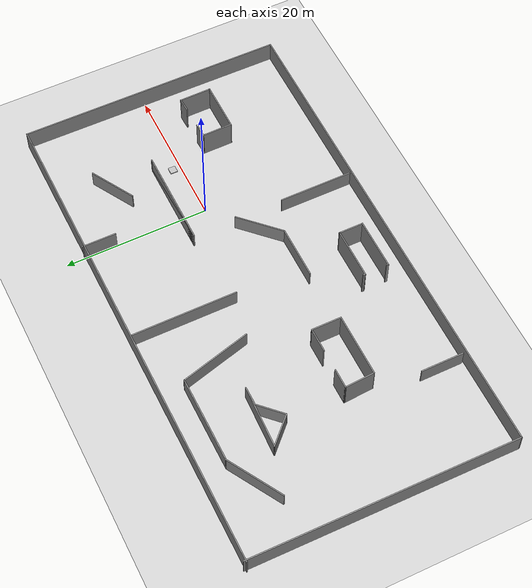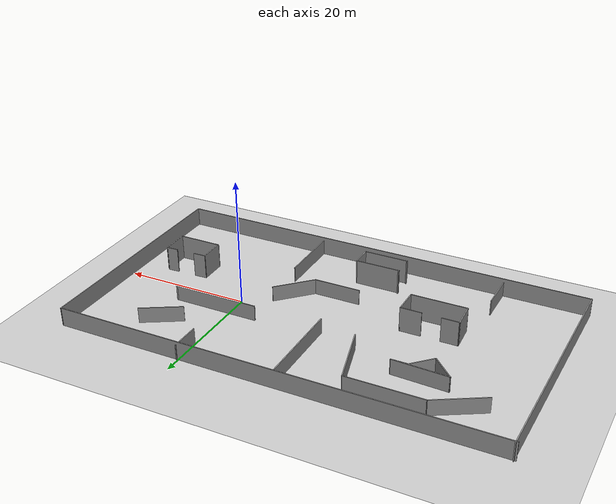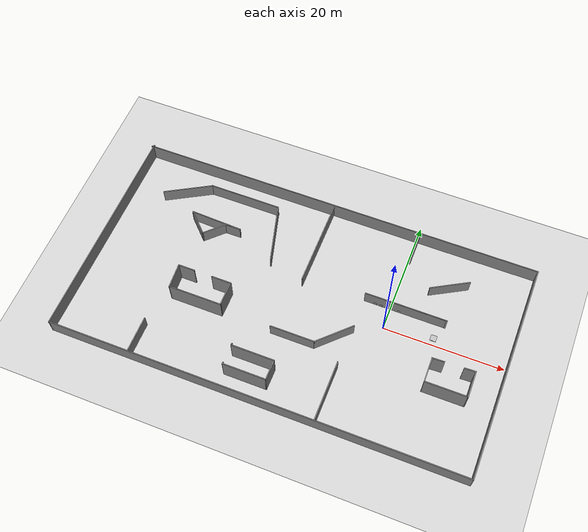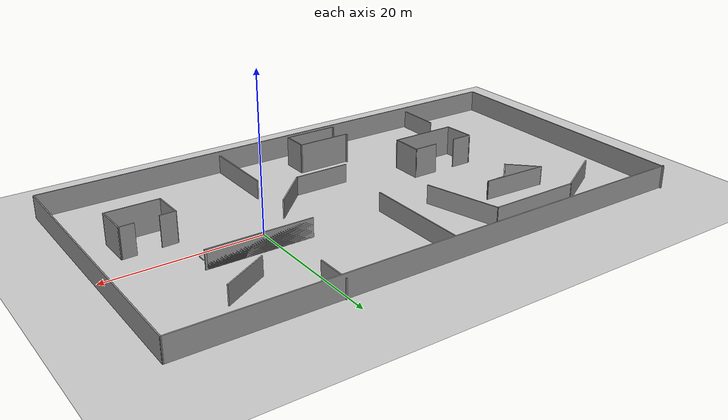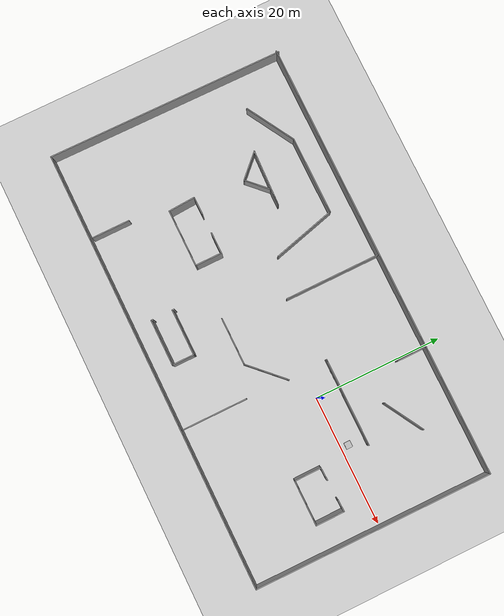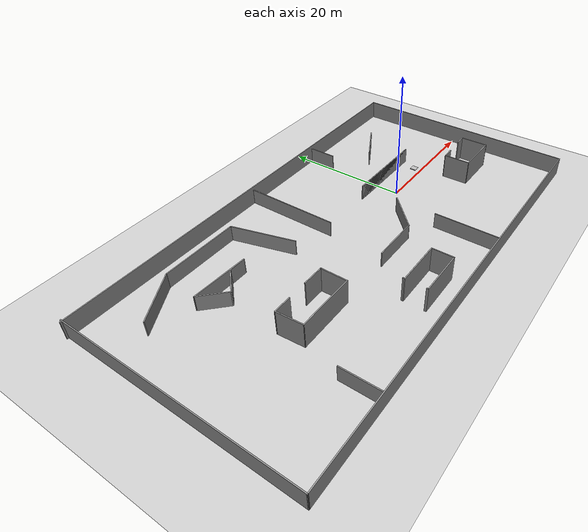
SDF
<sdf version="1.7">
 <world name="default">
  <model name="ground_plane">
   <static>1</static>
   <link name="link">
    <collision name="collision">
     <geometry><plane><normal>0 0 1</normal><size>100 100</size></plane></geometry>
     <surface>
      <contact><collide_bitmask>65535</collide_bitmask></contact>
      <friction><ode><mu>100</mu><mu2>50</mu2></ode></friction>
     </surface>
    </collision>
    <visual name="visual">
     <cast_shadows>0</cast_shadows>
     <geometry><plane><normal>0 0 1</normal><size>100 100</size></plane></geometry>
     <material>
      <script><uri>file://media/materials/scripts/gazebo.material</uri><name>Gazebo/Grey</name></script>
     </material>
    </visual>
   </link>
  </model>
  <model name="forkwork.world">
   <pose>-14.2792 -0.985001 0 0 -0 0</pose>
   <link name="Wall_0">
    <collision name="Wall_0_Collision">
     <geometry><box><size>37.2514 0.15 3</size></box></geometry>
     <pose>0 0 1.5 0 -0 0</pose>
    </collision>
    <visual name="Wall_0_Visual">
     <pose>0 0 1.5 0 -0 0</pose>
     <geometry><box><size>37.2514 0.15 3</size></box></geometry>
     <material>
      <script><uri>file://media/materials/scripts/gazebo.material</uri><name>Gazebo/Grey</name></script>
      <ambient>1 1 1 1</ambient>
     </material>
     <meta><layer>0</layer></meta>
    </visual>
    <pose>-34.4248 1e-06 0 0 -0 -1.57947</pose>
   </link>
   <link name="Wall_1">
    <collision name="Wall_1_Collision">
     <geometry><box><size>69.1611 0.15 3</size></box></geometry>
     <pose>0 0 1.5 0 -0 0</pose>
    </collision>
    <visual name="Wall_1_Visual">
     <pose>0 0 1.5 0 -0 0</pose>
     <geometry><box><size>69.1611 0.15 3</size></box></geometry>
     <material>
      <script><uri>file://media/materials/scripts/gazebo.material</uri><name>Gazebo/Grey</name></script>
      <ambient>1 1 1 1</ambient>
     </material>
     <meta><layer>0</layer></meta>
    </visual>
    <pose>-0.080338 -18.55 0 0 -0 0</pose>
   </link>
   <link name="Wall_10">
    <collision name="Wall_10_Collision">
     <geometry><box><size>6 0.15 2.5</size></box></geometry>
     <pose>0 0 1.25 0 -0 0</pose>
    </collision>
    <visual name="Wall_10_Visual">
     <pose>0 0 1.25 0 -0 0</pose>
     <geometry><box><size>6 0.15 2.5</size></box></geometry>
     <material>
      <script><uri>file://media/materials/scripts/gazebo.material</uri><name>Gazebo/Grey</name></script>
      <ambient>1 1 1 1</ambient>
     </material>
     <meta><layer>0</layer></meta>
    </visual>
    <pose>-21.0697 -15.2699 0 0 -0 -1.5708</pose>
   </link>
   <link name="Wall_12">
    <collision name="Wall_12_Collision">
     <geometry><box><size>10.25 0.15 2.5</size></box></geometry>
     <pose>0 0 1.25 0 -0 0</pose>
    </collision>
    <visual name="Wall_12_Visual">
     <pose>0 0 1.25 0 -0 0</pose>
     <geometry><box><size>10.25 0.15 2.5</size></box></geometry>
     <material>
      <script><uri>file://media/materials/scripts/gazebo.material</uri><name>Gazebo/Grey</name></script>
      <ambient>1 1 1 1</ambient>
     </material>
     <meta><layer>0</layer></meta>
    </visual>
    <pose>9.87941 -13.292 0 0 -0 -1.5708</pose>
   </link>
   <link name="Wall_14">
    <collision name="Wall_14_Collision">
     <geometry><box><size>13.5 0.15 2.5</size></box></geometry>
     <pose>0 0 1.25 0 -0 0</pose>
    </collision>
    <visual name="Wall_14_Visual">
     <pose>0 0 1.25 0 -0 0</pose>
     <geometry><box><size>13.5 0.15 2.5</size></box></geometry>
     <material>
      <script><uri>file://media/materials/scripts/gazebo.material</uri><name>Gazebo/Grey</name></script>
      <ambient>1 1 1 1</ambient>
     </material>
     <meta><layer>0</layer></meta>
    </visual>
    <pose>16.5544 4.66556 0 0 -0 0</pose>
   </link>
   <link name="Wall_16">
    <collision name="Wall_16_Collision">
     <geometry><box><size>15 0.15 2.5</size></box></geometry>
     <pose>0 0 1.25 0 -0 0</pose>
    </collision>
    <visual name="Wall_16_Visual">
     <pose>0 0 1.25 0 -0 0</pose>
     <geometry><box><size>15 0.15 2.5</size></box></geometry>
     <material>
      <script><uri>file://media/materials/scripts/gazebo.material</uri><name>Gazebo/Grey</name></script>
      <ambient>1 1 1 1</ambient>
     </material>
     <meta><layer>0</layer></meta>
    </visual>
    <pose>-0.544267 10.8715 0 0 -0 -1.5708</pose>
   </link>
   <link name="Wall_18">
    <collision name="Wall_18_Collision">
     <geometry><box><size>4.75 0.15 2.5</size></box></geometry>
     <pose>0 0 1.25 0 -0 0</pose>
    </collision>
    <visual name="Wall_18_Visual">
     <pose>0 0 1.25 0 -0 0</pose>
     <geometry><box><size>4.75 0.15 2.5</size></box></geometry>
     <material>
      <script><uri>file://media/materials/scripts/gazebo.material</uri><name>Gazebo/Grey</name></script>
      <ambient>1 1 1 1</ambient>
     </material>
     <meta><layer>0</layer></meta>
    </visual>
    <pose>14.5671 16.1364 0 0 -0 -1.5708</pose>
   </link>
   <link name="Wall_2">
    <collision name="Wall_2_Collision">
     <geometry><box><size>37.0004 0.15 3</size></box></geometry>
     <pose>0 0 1.5 0 -0 0</pose>
    </collision>
    <visual name="Wall_2_Visual">
     <pose>0 0 1.5 0 -0 0</pose>
     <geometry><box><size>37.0004 0.15 3</size></box></geometry>
     <material>
      <script><uri>file://media/materials/scripts/gazebo.material</uri><name>Gazebo/Grey</name></script>
      <ambient>1 1 1 1</ambient>
     </material>
     <meta><layer>0</layer></meta>
    </visual>
    <pose>34.5057 -0.124999 0 0 -0 1.56643</pose>
   </link>
   <link name="Wall_20">
    <collision name="Wall_20_Collision">
     <geometry><box><size>13.75 0.15 2.5</size></box></geometry>
     <pose>0 0 1.25 0 -0 0</pose>
    </collision>
    <visual name="Wall_20_Visual">
     <pose>0 0 1.25 0 -0 0</pose>
     <geometry><box><size>13.75 0.15 2.5</size></box></geometry>
     <material>
      <script><uri>file://media/materials/scripts/gazebo.material</uri><name>Gazebo/Grey</name></script>
      <ambient>1 1 1 1</ambient>
     </material>
     <meta><layer>0</layer></meta>
    </visual>
    <pose>16.6794 4.66556 0 0 -0 0</pose>
   </link>
   <link name="Wall_27">
    <pose>-6.14084 -13.726 0 0 -0 -1.5708</pose>
    <visual name="Wall_27_Visual_0">
     <pose>-1.67802 0 2 0 -0 0</pose>
     <geometry><box><size>0.393966 0.15 4</size></box></geometry>
     <material>
      <script><uri>file://media/materials/scripts/gazebo.material</uri><name>Gazebo/Grey</name></script>
      <ambient>1 1 1 1</ambient>
     </material>
     <meta><layer>0</layer></meta>
    </visual>
    <collision name="Wall_27_Collision_0">
     <geometry><box><size>0.393966 0.15 4</size></box></geometry>
     <pose>-1.67802 0 2 0 -0 0</pose>
    </collision>
    <visual name="Wall_27_Visual_1">
     <pose>1.69698 0 2 0 -0 0</pose>
     <geometry><box><size>0.356034 0.15 4</size></box></geometry>
     <material>
      <script><uri>file://media/materials/scripts/gazebo.material</uri><name>Gazebo/Grey</name></script>
      <ambient>1 1 1 1</ambient>
     </material>
     <meta><layer>0</layer></meta>
    </visual>
    <collision name="Wall_27_Collision_1">
     <geometry><box><size>0.356034 0.15 4</size></box></geometry>
     <pose>1.69698 0 2 0 -0 0</pose>
    </collision>
   </link>
   <link name="Wall_28">
    <collision name="Wall_28_Collision">
     <geometry><box><size>7.25 0.15 4</size></box></geometry>
     <pose>0 0 2 0 -0 0</pose>
    </collision>
    <visual name="Wall_28_Visual">
     <pose>0 0 2 0 -0 0</pose>
     <geometry><box><size>7.25 0.15 4</size></box></geometry>
     <material>
      <script><uri>file://media/materials/scripts/gazebo.material</uri><name>Gazebo/Grey</name></script>
      <ambient>1 1 1 1</ambient>
     </material>
     <meta><layer>0</layer></meta>
    </visual>
    <pose>-2.59084 -15.526 0 0 -0 0</pose>
   </link>
   <link name="Wall_29">
    <collision name="Wall_29_Collision">
     <geometry><box><size>3.5 0.15 4</size></box></geometry>
     <pose>0 0 2 0 -0 0</pose>
    </collision>
    <visual name="Wall_29_Visual">
     <pose>0 0 2 0 -0 0</pose>
     <geometry><box><size>3.5 0.15 4</size></box></geometry>
     <material>
      <script><uri>file://media/materials/scripts/gazebo.material</uri><name>Gazebo/Grey</name></script>
      <ambient>1 1 1 1</ambient>
     </material>
     <meta><layer>0</layer></meta>
    </visual>
    <pose>0.959162 -13.851 0 0 -0 1.5708</pose>
   </link>
   <link name="Wall_3">
    <collision name="Wall_3_Collision">
     <geometry><box><size>69.25 0.15 3</size></box></geometry>
     <pose>0 0 1.5 0 -0 0</pose>
    </collision>
    <visual name="Wall_3_Visual">
     <pose>0 0 1.5 0 -0 0</pose>
     <geometry><box><size>69.25 0.15 3</size></box></geometry>
     <material>
      <script><uri>file://media/materials/scripts/gazebo.material</uri><name>Gazebo/Grey</name></script>
      <ambient>1 1 1 1</ambient>
     </material>
     <meta><layer>0</layer></meta>
    </visual>
    <pose>0.036161 18.3 0 0 -0 3.14159</pose>
   </link>
   <link name="Wall_30">
    <collision name="Wall_30_Collision">
     <geometry><box><size>7.25 0.15 4</size></box></geometry>
     <pose>0 0 2 0 -0 0</pose>
    </collision>
    <visual name="Wall_30_Visual">
     <pose>0 0 2 0 -0 0</pose>
     <geometry><box><size>7.25 0.15 4</size></box></geometry>
     <material>
      <script><uri>file://media/materials/scripts/gazebo.material</uri><name>Gazebo/Grey</name></script>
      <ambient>1 1 1 1</ambient>
     </material>
     <meta><layer>0</layer></meta>
    </visual>
    <pose>-2.59084 -12.176 0 0 -0 3.14159</pose>
   </link>
   <link name="Wall_32">
    <collision name="Wall_32_Collision">
     <geometry><box><size>4.25 0.15 4</size></box></geometry>
     <pose>0 0 2 0 -0 0</pose>
    </collision>
    <visual name="Wall_32_Visual">
     <pose>0 0 2 0 -0 0</pose>
     <geometry><box><size>4.25 0.15 4</size></box></geometry>
     <material>
      <script><uri>file://media/materials/scripts/gazebo.material</uri><name>Gazebo/Grey</name></script>
      <ambient>1 1 1 1</ambient>
     </material>
     <meta><layer>0</layer></meta>
    </visual>
    <pose>23.2197 -5.021 0 0 -0 -1.55982</pose>
   </link>
   <link name="Wall_33">
    <collision name="Wall_33_Collision">
     <geometry><box><size>7 0.15 4</size></box></geometry>
     <pose>0 0 2 0 -0 0</pose>
    </collision>
    <visual name="Wall_33_Visual">
     <pose>0 0 2 0 -0 0</pose>
     <geometry><box><size>7 0.15 4</size></box></geometry>
     <material>
      <script><uri>file://media/materials/scripts/gazebo.material</uri><name>Gazebo/Grey</name></script>
      <ambient>1 1 1 1</ambient>
     </material>
     <meta><layer>0</layer></meta>
    </visual>
    <pose>26.6672 -7.071 0 0 -0 0</pose>
   </link>
   <link name="Wall_34">
    <collision name="Wall_34_Collision">
     <geometry><box><size>4.5 0.15 4</size></box></geometry>
     <pose>0 0 2 0 -0 0</pose>
    </collision>
    <visual name="Wall_34_Visual">
     <pose>0 0 2 0 -0 0</pose>
     <geometry><box><size>4.5 0.15 4</size></box></geometry>
     <material>
      <script><uri>file://media/materials/scripts/gazebo.material</uri><name>Gazebo/Grey</name></script>
      <ambient>1 1 1 1</ambient>
     </material>
     <meta><layer>0</layer></meta>
    </visual>
    <pose>30.0697 -4.896 0 0 -0 1.58114</pose>
   </link>
   <link name="Wall_35">
    <pose>26.6222 -2.846 0 0 -0 -3.10511</pose>
    <visual name="Wall_35_Visual_0">
     <pose>-2.54266 0 2 0 -0 0</pose>
     <geometry><box><size>1.91925 0.15 4</size></box></geometry>
     <material>
      <script><uri>file://media/materials/scripts/gazebo.material</uri><name>Gazebo/Grey</name></script>
      <ambient>1 1 1 1</ambient>
     </material>
     <meta><layer>0</layer></meta>
    </visual>
    <collision name="Wall_35_Collision_0">
     <geometry><box><size>1.91925 0.15 4</size></box></geometry>
     <pose>-2.54266 0 2 0 -0 0</pose>
    </collision>
    <visual name="Wall_35_Visual_1">
     <pose>2.45962 0 2 0 -0 0</pose>
     <geometry><box><size>2.08531 0.15 4</size></box></geometry>
     <material>
      <script><uri>file://media/materials/scripts/gazebo.material</uri><name>Gazebo/Grey</name></script>
      <ambient>1 1 1 1</ambient>
     </material>
     <meta><layer>0</layer></meta>
    </visual>
    <collision name="Wall_35_Collision_1">
     <geometry><box><size>2.08531 0.15 4</size></box></geometry>
     <pose>2.45962 0 2 0 -0 0</pose>
    </collision>
   </link>
   <link name="Wall_37">
    <collision name="Wall_37_Collision">
     <geometry><box><size>8.5 0.15 2.5</size></box></geometry>
     <pose>0 0 1.25 0 -0 0</pose>
    </collision>
    <visual name="Wall_37_Visual">
     <pose>0 0 1.25 0 -0 0</pose>
     <geometry><box><size>8.5 0.15 2.5</size></box></geometry>
     <material>
      <script><uri>file://media/materials/scripts/gazebo.material</uri><name>Gazebo/Grey</name></script>
      <ambient>1 1 1 1</ambient>
     </material>
     <meta><layer>0</layer></meta>
    </visual>
    <pose>-25.0526 12.6884 0 0 -0 0.523599</pose>
   </link>
   <link name="Wall_38">
    <collision name="Wall_38_Collision">
     <geometry><box><size>12.25 0.15 2.5</size></box></geometry>
     <pose>0 0 1.25 0 -0 0</pose>
    </collision>
    <visual name="Wall_38_Visual">
     <pose>0 0 1.25 0 -0 0</pose>
     <geometry><box><size>12.25 0.15 2.5</size></box></geometry>
     <material>
      <script><uri>file://media/materials/scripts/gazebo.material</uri><name>Gazebo/Grey</name></script>
      <ambient>1 1 1 1</ambient>
     </material>
     <meta><layer>0</layer></meta>
    </visual>
    <pose>-15.387 14.7759 0 0 -0 0</pose>
   </link>
   <link name="Wall_39">
    <collision name="Wall_39_Collision">
     <geometry><box><size>10.25 0.15 2.5</size></box></geometry>
     <pose>0 0 1.25 0 -0 0</pose>
    </collision>
    <visual name="Wall_39_Visual">
     <pose>0 0 1.25 0 -0 0</pose>
     <geometry><box><size>10.25 0.15 2.5</size></box></geometry>
     <material>
      <script><uri>file://media/materials/scripts/gazebo.material</uri><name>Gazebo/Grey</name></script>
      <ambient>1 1 1 1</ambient>
     </material>
     <meta><layer>0</layer></meta>
    </visual>
    <pose>-8.02994 9.89796 0 0 -0 -1.309</pose>
   </link>
   <link name="Wall_41">
    <collision name="Wall_41_Collision">
     <geometry><box><size>7.5 0.15 2.5</size></box></geometry>
     <pose>0 0 1.25 0 -0 0</pose>
    </collision>
    <visual name="Wall_41_Visual">
     <pose>0 0 1.25 0 -0 0</pose>
     <geometry><box><size>7.5 0.15 2.5</size></box></geometry>
     <material>
      <script><uri>file://media/materials/scripts/gazebo.material</uri><name>Gazebo/Grey</name></script>
      <ambient>1 1 1 1</ambient>
     </material>
     <meta><layer>0</layer></meta>
    </visual>
    <pose>1.59161 -6.32949 0 0 -0 0</pose>
   </link>
   <link name="Wall_42">
    <collision name="Wall_42_Collision">
     <geometry><box><size>7 0.15 2.5</size></box></geometry>
     <pose>0 0 1.25 0 -0 0</pose>
    </collision>
    <visual name="Wall_42_Visual">
     <pose>0 0 1.25 0 -0 0</pose>
     <geometry><box><size>7 0.15 2.5</size></box></geometry>
     <material>
      <script><uri>file://media/materials/scripts/gazebo.material</uri><name>Gazebo/Grey</name></script>
      <ambient>1 1 1 1</ambient>
     </material>
     <meta><layer>0</layer></meta>
    </visual>
    <pose>7.68845 -3.90765 0 0 -0 0.785398</pose>
   </link>
   <link name="Wall_44">
    <collision name="Wall_44_Collision">
     <geometry><box><size>6.75 0.15 2.5</size></box></geometry>
     <pose>0 0 1.25 0 -0 0</pose>
    </collision>
    <visual name="Wall_44_Visual">
     <pose>0 0 1.25 0 -0 0</pose>
     <geometry><box><size>6.75 0.15 2.5</size></box></geometry>
     <material>
      <script><uri>file://media/materials/scripts/gazebo.material</uri><name>Gazebo/Grey</name></script>
      <ambient>1 1 1 1</ambient>
     </material>
     <meta><layer>0</layer></meta>
    </visual>
    <pose>22.0634 11.0497 0 0 -0 -2.61799</pose>
   </link>
   <link name="Wall_46">
    <pose>-15.0788 -2.284 0 0 -0 0</pose>
    <visual name="Wall_46_Visual_0">
     <pose>-3.20513 0 2 0 -0 0</pose>
     <geometry><box><size>2.83973 0.15 4</size></box></geometry>
     <material>
      <script><uri>file://media/materials/scripts/gazebo.material</uri><name>Gazebo/Grey</name></script>
      <ambient>1 1 1 1</ambient>
     </material>
     <meta><layer>0</layer></meta>
    </visual>
    <collision name="Wall_46_Collision_0">
     <geometry><box><size>2.83973 0.15 4</size></box></geometry>
     <pose>-3.20513 0 2 0 -0 0</pose>
    </collision>
    <visual name="Wall_46_Visual_1">
     <pose>2.91987 0 2 0 -0 0</pose>
     <geometry><box><size>3.41027 0.15 4</size></box></geometry>
     <material>
      <script><uri>file://media/materials/scripts/gazebo.material</uri><name>Gazebo/Grey</name></script>
      <ambient>1 1 1 1</ambient>
     </material>
     <meta><layer>0</layer></meta>
    </visual>
    <collision name="Wall_46_Collision_1">
     <geometry><box><size>3.41027 0.15 4</size></box></geometry>
     <pose>2.91987 0 2 0 -0 0</pose>
    </collision>
   </link>
   <link name="Wall_47">
    <collision name="Wall_47_Collision">
     <geometry><box><size>4.25 0.15 4</size></box></geometry>
     <pose>0 0 2 0 -0 0</pose>
    </collision>
    <visual name="Wall_47_Visual">
     <pose>0 0 2 0 -0 0</pose>
     <geometry><box><size>4.25 0.15 4</size></box></geometry>
     <material>
      <script><uri>file://media/materials/scripts/gazebo.material</uri><name>Gazebo/Grey</name></script>
      <ambient>1 1 1 1</ambient>
     </material>
     <meta><layer>0</layer></meta>
    </visual>
    <pose>-10.5288 -4.334 0 0 -0 -1.5708</pose>
   </link>
   <link name="Wall_48">
    <collision name="Wall_48_Collision">
     <geometry><box><size>9 0.15 4</size></box></geometry>
     <pose>0 0 2 0 -0 0</pose>
    </collision>
    <visual name="Wall_48_Visual">
     <pose>0 0 2 0 -0 0</pose>
     <geometry><box><size>9 0.15 4</size></box></geometry>
     <material>
      <script><uri>file://media/materials/scripts/gazebo.material</uri><name>Gazebo/Grey</name></script>
      <ambient>1 1 1 1</ambient>
     </material>
     <meta><layer>0</layer></meta>
    </visual>
    <pose>-14.9538 -6.384 0 0 -0 3.14159</pose>
   </link>
   <link name="Wall_49">
    <collision name="Wall_49_Collision">
     <geometry><box><size>4.25762 0.15 4</size></box></geometry>
     <pose>0 0 2 0 -0 0</pose>
    </collision>
    <visual name="Wall_49_Visual">
     <pose>0 0 2 0 -0 0</pose>
     <geometry><box><size>4.25762 0.15 4</size></box></geometry>
     <material>
      <script><uri>file://media/materials/scripts/gazebo.material</uri><name>Gazebo/Grey</name></script>
      <ambient>1 1 1 1</ambient>
     </material>
     <meta><layer>0</layer></meta>
    </visual>
    <pose>-19.5038 -4.334 0 0 -0 1.6317</pose>
   </link>
   <link name="Wall_5">
    <collision name="Wall_5_Collision">
     <geometry><box><size>4.75 0.15 2.5</size></box></geometry>
     <pose>0 0 1.25 0 -0 0</pose>
    </collision>
    <visual name="Wall_5_Visual">
     <pose>0 0 1.25 0 -0 0</pose>
     <geometry><box><size>4.75 0.15 2.5</size></box></geometry>
     <material>
      <script><uri>file://media/materials/scripts/gazebo.material</uri><name>Gazebo/Grey</name></script>
      <ambient>1 1 1 1</ambient>
     </material>
     <meta><layer>0</layer></meta>
    </visual>
    <pose>-20.7306 7.10775 0 0 -0 -0.785398</pose>
   </link>
   <link name="Wall_6">
    <collision name="Wall_6_Collision">
     <geometry><box><size>4.25 0.15 2.5</size></box></geometry>
     <pose>0 0 1.25 0 -0 0</pose>
    </collision>
    <visual name="Wall_6_Visual">
     <pose>0 0 1.25 0 -0 0</pose>
     <geometry><box><size>4.25 0.15 2.5</size></box></geometry>
     <material>
      <script><uri>file://media/materials/scripts/gazebo.material</uri><name>Gazebo/Grey</name></script>
      <ambient>1 1 1 1</ambient>
     </material>
     <meta><layer>0</layer></meta>
    </visual>
    <pose>-17.6547 6.93097 0 0 -0 0.785398</pose>
   </link>
   <link name="Wall_7">
    <collision name="Wall_7_Collision">
     <geometry><box><size>2.75 0.15 2.5</size></box></geometry>
     <pose>0 0 1.25 0 -0 0</pose>
    </collision>
    <visual name="Wall_7_Visual">
     <pose>0 0 1.25 0 -0 0</pose>
     <geometry><box><size>2.75 0.15 2.5</size></box></geometry>
     <material>
      <script><uri>file://media/materials/scripts/gazebo.material</uri><name>Gazebo/Grey</name></script>
      <ambient>1 1 1 1</ambient>
     </material>
     <meta><layer>0</layer></meta>
    </visual>
    <pose>-14.9051 8.38054 0 0 -0 0</pose>
   </link>
   <link name="Wall_8">
    <collision name="Wall_8_Collision">
     <geometry><box><size>8.90897 0.15 2.5</size></box></geometry>
     <pose>0 0 1.25 0 -0 0</pose>
    </collision>
    <visual name="Wall_8_Visual">
     <pose>0 0 1.25 0 -0 0</pose>
     <geometry><box><size>8.90897 0.15 2.5</size></box></geometry>
     <material>
      <script><uri>file://media/materials/scripts/gazebo.material</uri><name>Gazebo/Grey</name></script>
      <ambient>1 1 1 1</ambient>
     </material>
     <meta><layer>0</layer></meta>
    </visual>
    <pose>-17.981 8.55732 0 0 -0 3.10122</pose>
   </link>
   <static>1</static>
  </model>
  <model name="aruco_3">
   <link name="link">
    <pose>0 0 0.115 0 1.57 0</pose>
    <inertial>
     <mass>0.39</mass>
     <inertia><ixx>0.00058</ixx><ixy>0</ixy><ixz>0</ixz><iyy>0.00058</iyy><iyz>0</iyz><izz>0.00019</izz></inertia>
    </inertial>
    <collision name="collision"><geometry><box><size>0.496 0.496 0.01</size></box></geometry></collision>
    <visual name="visual">
     <geometry><box><size>0.496 0.496 0.01</size></box></geometry>
     <material>
      <script>
       <uri>model://apriltag/materials/scripts</uri>
       <uri>model://apriltag/materials/textures</uri>
       <name>startflag/Diffuse1</name>
      </script>
     </material>
    </visual>
   </link>
   <pose>-2.55292 3.59165 0.132995 1.8e-05 0.000866 -1.57136</pose>
  </model>
  <model name="aruco_3_clone">
   <link name="link">
    <pose>0 0 0.115 0 1.57 0</pose>
    <inertial>
     <mass>0.39</mass>
     <inertia><ixx>0.00058</ixx><ixy>0</ixy><ixz>0</ixz><iyy>0.00058</iyy><iyz>0</iyz><izz>0.00019</izz></inertia>
    </inertial>
    <collision name="collision"><geometry><box><size>0.496 0.496 0.01</size></box></geometry></collision>
    <visual name="visual">
     <geometry><box><size>0.496 0.496 0.01</size></box></geometry>
     <material>
      <script>
       <uri>model://apriltag/materials/scripts</uri>
       <uri>model://apriltag/materials/textures</uri>
       <name>startflag/Diffuse1</name>
      </script>
     </material>
    </visual>
   </link>
   <pose>-1.57417 3.58319 0.132995 -1.8e-05 0.000822 -1.57132</pose>
  </model>
  <model name="aruco_3_clone_clone">
   <link name="link">
    <pose>0 0 0.115 0 1.57 0</pose>
    <inertial>
     <mass>0.39</mass>
     <inertia><ixx>0.00058</ixx><ixy>0</ixy><ixz>0</ixz><iyy>0.00058</iyy><iyz>0</iyz><izz>0.00019</izz></inertia>
    </inertial>
    <collision name="collision"><geometry><box><size>0.496 0.496 0.01</size></box></geometry></collision>
    <visual name="visual">
     <geometry><box><size>0.496 0.496 0.01</size></box></geometry>
     <material>
      <script>
       <uri>model://apriltag/materials/scripts</uri>
       <uri>model://apriltag/materials/textures</uri>
       <name>startflag/Diffuse1</name>
      </script>
     </material>
    </visual>
   </link>
   <pose>1.41233 3.59362 0.132999 -2.1e-05 0.000824 -1.57132</pose>
  </model>
  <model name="euro_pallet">
   <link name="link">
    <inertial>
     <mass>1</mass>
     <inertia><ixx>0.16</ixx><ixy>0</ixy><ixz>0</ixz><iyy>0.16</iyy><iyz>0</iyz><izz>0.16</izz></inertia>
    </inertial>
    <collision name="collision">
     <geometry><mesh><uri>model://euro_pallet/meshes/pallet.dae</uri><scale>1 1 1</scale></mesh></geometry>
     <surface>
      <friction>
       <ode><mu>1</mu><mu2>1</mu2><slip1>0</slip1><slip2>0</slip2><fdir1><x>0.0</x><y>0.0</y><z>0.0</z></fdir1></ode>
       <torsional>
        <coefficient>1</coefficient>
        <use_patch_radius>1</use_patch_radius>
        <patch_radius>0</patch_radius>
        <surface_radius>0</surface_radius>
       </torsional>
      </friction>
      <restitution_coefficient>0.0</restitution_coefficient>
      <bounce_threshold>100000</bounce_threshold>
     </surface>
    </collision>
    <visual name="visual">
     <geometry><mesh><uri>model://euro_pallet/meshes/pallet.dae</uri><scale>1 1 1</scale></mesh></geometry>
    </visual>
   </link>
   <pose>8.05588 1.18973 0.059997 2e-06 -1.3e-05 -0.001077</pose>
  </model>
 </world>
</sdf>
